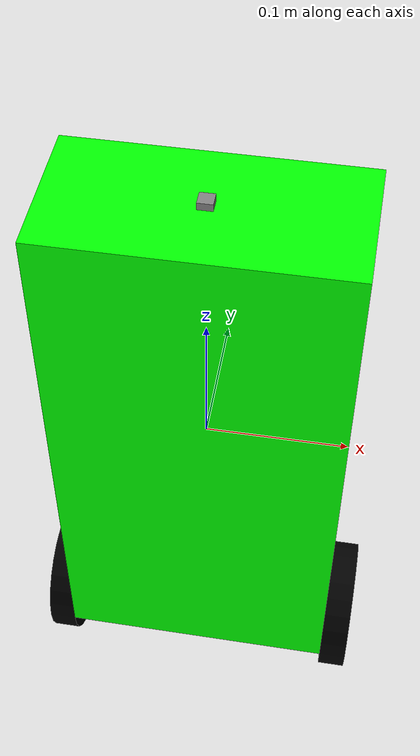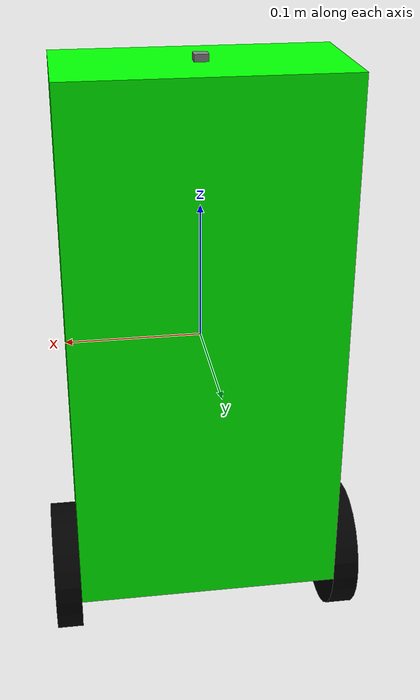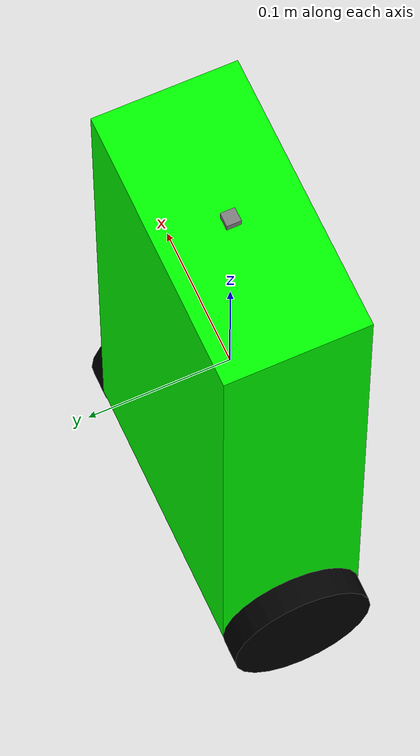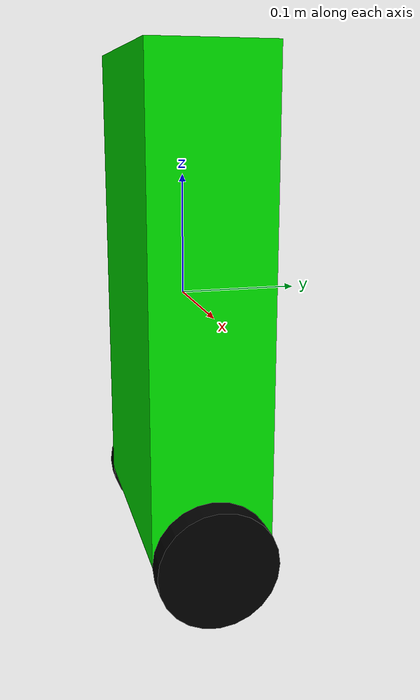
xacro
<?xml version="1.0"?>
<robot name="self_balancing_robot"
  xmlns:xacro="http://www.ros.org/wiki/xacro">

  <!-- Macro for color -->
  <xacro:macro name="material_with_color" params="name color">
    <material name="${name}">
      <color rgba="${color}"/>
    </material>
  </xacro:macro>

  <link name="dummy_root_link">
    <visual>
      <geometry>
        <sphere radius="0.01"/>
      </geometry>
      <material name="Invisible">
        <color rgba="0 0 0 0"/>
      </material>
    </visual>
  </link>

  <!-- Fixed Joint from Dummy Link to Base Link -->
  <joint name="dummy_to_base_joint" type="fixed">
    <parent link="dummy_root_link"/>
    <child link="base_link"/>
    <origin xyz="0 0 0" rpy="0 0 0"/>
  </joint>

  <!-- Robot Base -->
  <link name="base_link">
    <inertial>
      <origin xyz="0 0 0" />
      <mass value="1.5" />
      <inertia ixx="0.01" ixy="0.0" ixz="0.0" iyy="0.01" iyz="0.0" izz="0.02" />
    </inertial>
    <visual>
      <origin xyz="0 0 0" />
      <geometry>
        <box size="0.2 0.1 0.4" />
      </geometry>
      <xacro:material_with_color name="Green" color="0 1 0 1" />
    </visual>
    <collision>
      <origin xyz="0 0 0" />
      <geometry>
        <box size="0.2 0.1 0.4" />
      </geometry>
    </collision>
  </link>

  <!-- IMU Sensor Link -->
  <link name="imu_link">
    <inertial>
      <origin xyz="0 0 0" />
      <mass value="0.01" />
      <inertia ixx="1e-5" ixy="0" ixz="0" iyy="1e-5" iyz="0" izz="1e-5" />
    </inertial>
    <visual>
      <origin xyz="0 0 0" />
      <geometry>
        <box size="0.01 0.01 0.01" />
      </geometry>
      <xacro:material_with_color name="Gray" color="0.5 0.5 0.5 1" />
    </visual>
    <collision>
      <origin xyz="0 0 0" />
      <geometry>
        <box size="0.01 0.01 0.01" />
      </geometry>
    </collision>
  </link>

  <!-- Gazebo plugin for IMU -->
  <gazebo reference="imu_link">
    <sensor name="imu_sensor" type="imu">
      <always_on>1</always_on>
      <update_rate>10</update_rate>
      <visualize>true</visualize>
      <topic>/sensors/imu</topic>
    </sensor>
  </gazebo>

  <!-- Left Wheel -->
  <link name="left_wheel">
    <inertial>
      <origin xyz="0 0 0" />
      <mass value="0.3" />
      <inertia ixx="0.005" ixy="0.0" ixz="0.0" iyy="0.005" iyz="0.0" izz="0.01" />
    </inertial>
    <visual>
      <geometry>
        <cylinder radius="0.05" length="0.02" />
      </geometry>
      <xacro:material_with_color name="Black" color="0 0 0 1" />
    </visual>
    <collision>
      <geometry>
        <cylinder radius="0.05" length="0.02" />
      </geometry>
    </collision>
  </link>

  <!-- Right Wheel -->
  <link name="right_wheel">
    <inertial>
      <origin xyz="0 0 0" />
      <mass value="0.3" />
      <inertia ixx="0.005" ixy="0.0" ixz="0.0" iyy="0.005" iyz="0.0" izz="0.01" />
    </inertial>
    <visual>
      <geometry>
        <cylinder radius="0.05" length="0.02" />
      </geometry>
      <xacro:material_with_color name="Black" color="0 0 0 1" />
    </visual>
    <collision>
      <geometry>
        <cylinder radius="0.05" length="0.02" />
      </geometry>
    </collision>
  </link>

  <xacro:include filename="$(find self_balancing_robot)/model/self_balancing_robot.gazebo" />

  <!-- Joint Definitions -->

  <!-- Joint between base_link and imu_link -->
  <joint name="base_to_imu_joint" type="fixed">
    <parent link="base_link"/>
    <child link="imu_link"/>
    <origin xyz="0 0 0.2" rpy="0 0 0"/>
    <!-- Adjust the position as needed -->
  </joint>

  <!-- Left Wheel Joint -->
  <joint name="left_wheel_joint" type="continuous">
    <parent link="base_link"/>
    <child link="left_wheel"/>
    <origin xyz="0.11 0.0 -0.2" rpy="0 1.57 0"/>
    <axis xyz="0 0 1"/>
    <limit effort="5000.0" velocity="500.0"/>
    <dynamics damping="1.0" friction="1.0"/>
  </joint>

  <!-- Right Wheel Joint -->
  <joint name="right_wheel_joint" type="continuous">
    <parent link="base_link"/>
    <child link="right_wheel"/>
    <origin xyz="-0.11 0.0 -0.2" rpy="0 1.57 0"/>
    <axis xyz="0 0 1"/>
    <limit effort="5000.0" velocity="500.0"/>
    <dynamics damping="1.0" friction="1.0"/>
  </joint>
</robot>
